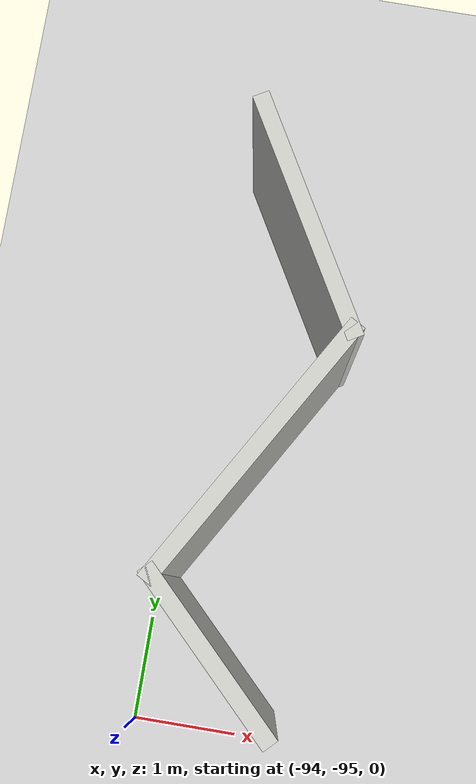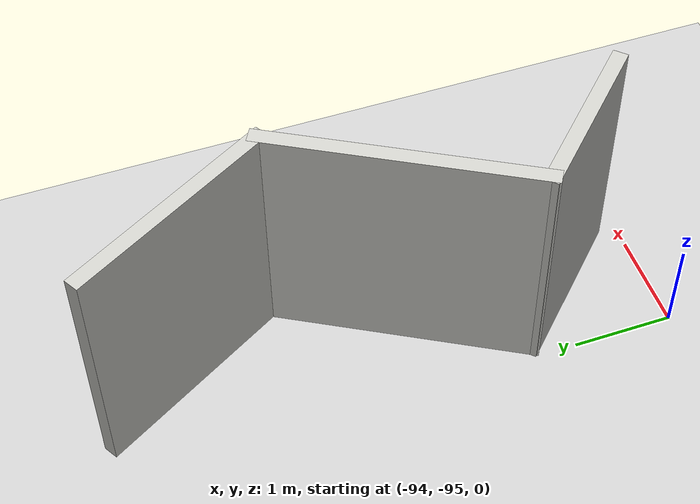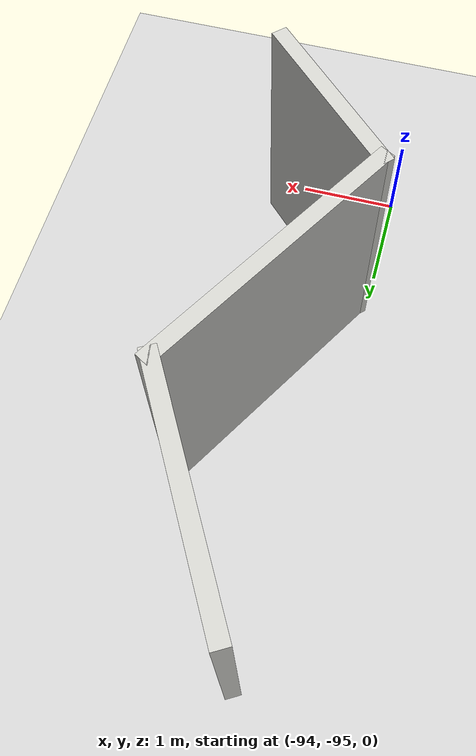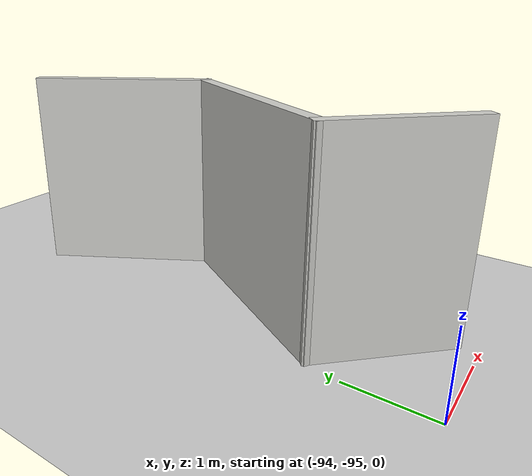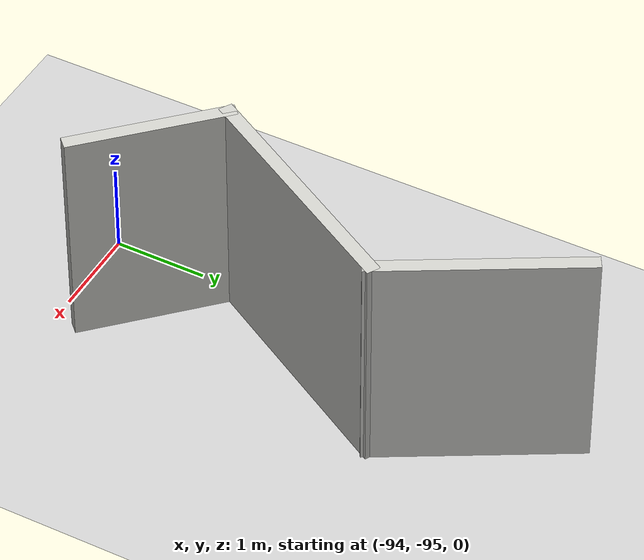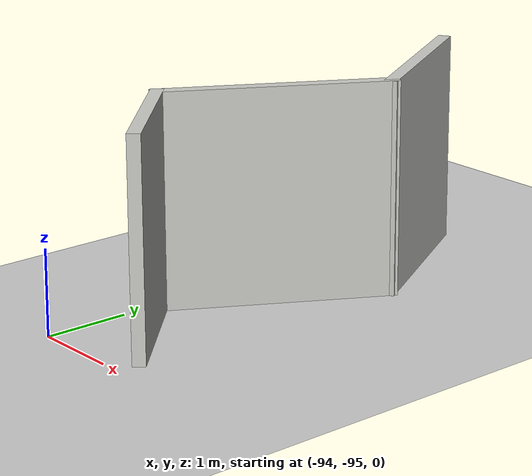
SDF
<sdf version="1.6">
 <world name="default">
  <model name="ground_plane">
   <pose>50 50 0 0 -0 0</pose>
   <static>1</static>
   <link name="link">
    <collision name="collision">
     <geometry><plane><normal>0 0 1</normal><size>100 100</size></plane></geometry>
     <surface><friction><ode><mu>100</mu><mu2>50</mu2></ode></friction></surface>
    </collision>
    <visual name="visual">
     <cast_shadows>0</cast_shadows>
     <geometry><plane><normal>0 0 1</normal><size>100 100</size></plane></geometry>
     <material>
      <script><uri>file://media/materials/scripts/gazebo.material</uri><name>Gazebo/Grey</name></script>
     </material>
    </visual>
   </link>
  </model>
  <model name="maze_1">
   <pose>-54.4916 -79.5001 0 0 -0 0</pose>
   <link name="Wall_47">
    <collision name="Wall_47_Collision">
     <geometry><box><size>1.75 0.15 2.5</size></box></geometry>
     <pose>0 0 1.25 0 -0 0</pose>
    </collision>
    <visual name="Wall_47_Visual">
     <pose>0 0 1.25 0 -0 0</pose>
     <geometry><box><size>1.75 0.15 2.5</size></box></geometry>
     <material>
      <script><uri>file://media/materials/scripts/gazebo.material</uri><name>Gazebo/CeilingTiled</name></script>
      <ambient>1 1 1 1</ambient>
     </material>
     <meta><layer>0</layer></meta>
    </visual>
    <pose>-38.8299 -14.6459 0 0 -0 2.35619</pose>
   </link>
   <link name="Wall_48">
    <collision name="Wall_48_Collision">
     <geometry><box><size>2.75 0.15 2.5</size></box></geometry>
     <pose>0 0 1.25 0 -0 0</pose>
    </collision>
    <visual name="Wall_48_Visual">
     <pose>0 0 1.25 0 -0 0</pose>
     <geometry><box><size>2.75 0.15 2.5</size></box></geometry>
     <material>
      <script><uri>file://media/materials/scripts/gazebo.material</uri><name>Gazebo/CeilingTiled</name></script>
      <ambient>1 1 1 1</ambient>
     </material>
     <meta><layer>0</layer></meta>
    </visual>
    <pose>-38.7456 -12.9544 0 0 -0 1.0472</pose>
   </link>
   <link name="Wall_49">
    <collision name="Wall_49_Collision">
     <geometry><box><size>2.25 0.15 2.5</size></box></geometry>
     <pose>0 0 1.25 0 -0 0</pose>
    </collision>
    <visual name="Wall_49_Visual">
     <pose>0 0 1.25 0 -0 0</pose>
     <geometry><box><size>2.25 0.15 2.5</size></box></geometry>
     <material>
      <script><uri>file://media/materials/scripts/gazebo.material</uri><name>Gazebo/CeilingTiled</name></script>
      <ambient>1 1 1 1</ambient>
     </material>
     <meta><layer>0</layer></meta>
    </visual>
    <pose>-38.6206 -10.9193 0 0 -0 2.0944</pose>
   </link>
   <static>1</static>
  </model>
 </world>
</sdf>
